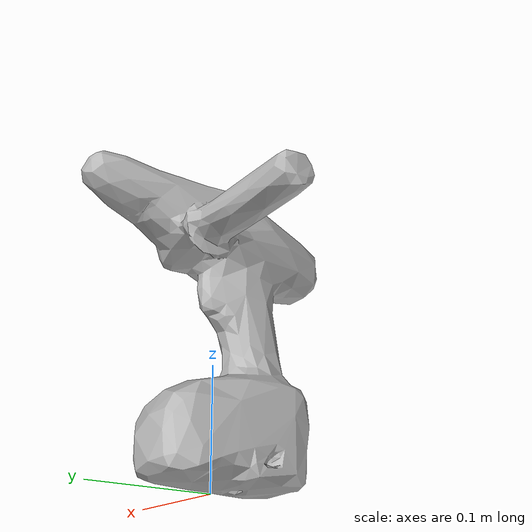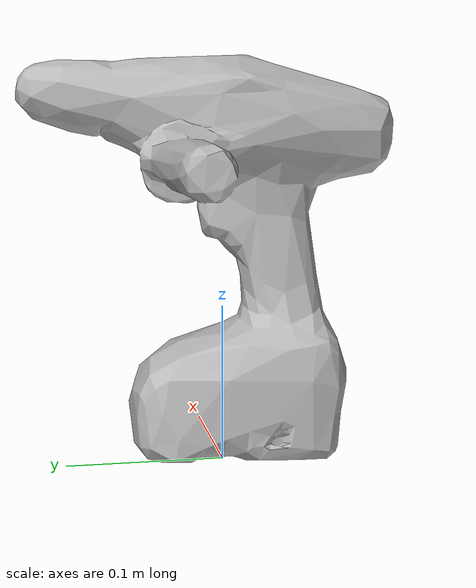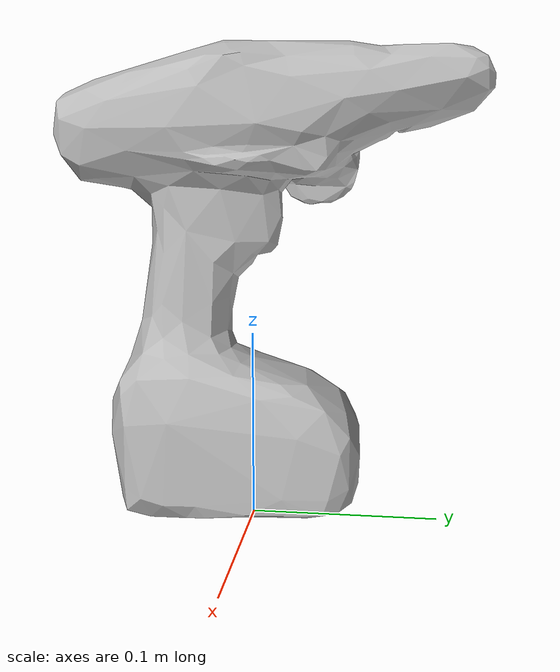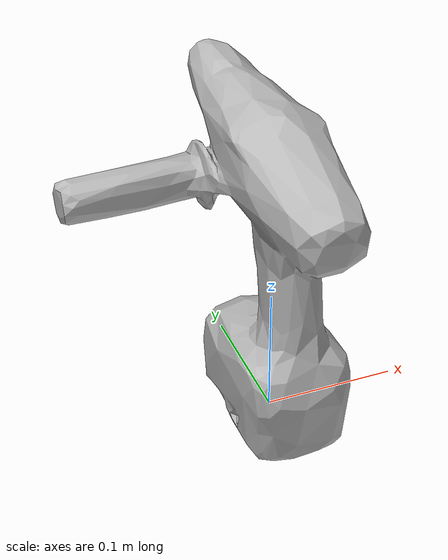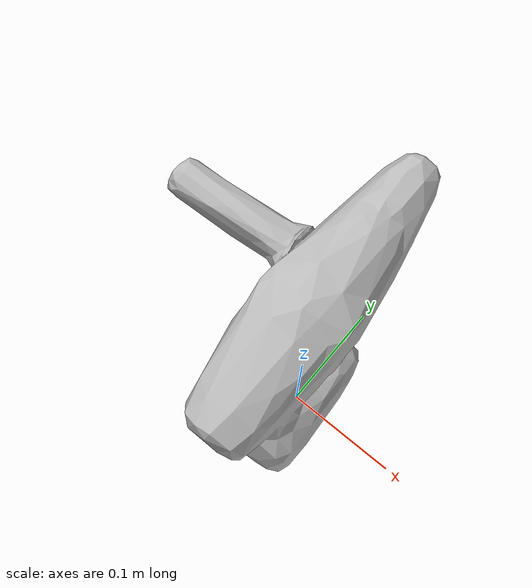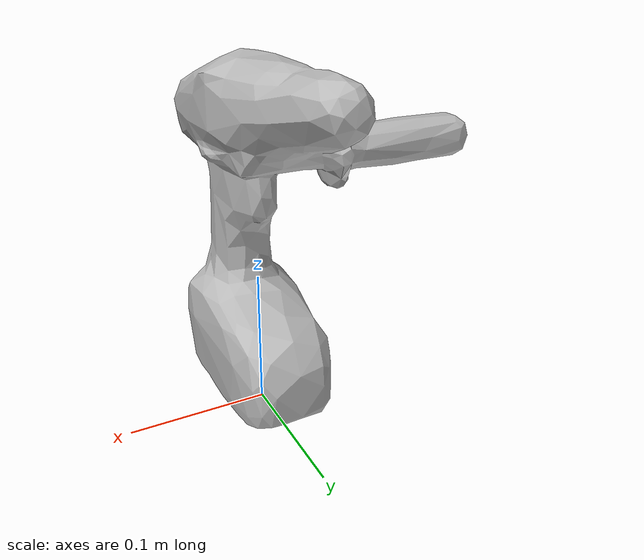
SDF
<?xml version="1.0" ?>
<sdf version="1.5">
  <model name="drill">
    <static>true</static>
    <link name="link">
      <inertial>
        <pose>-0.00637 -0.008 0.13254 0 0 0</pose>
        <inertia>
          <ixx>0.01331127</ixx>
          <ixy>-0.00030365</ixy>
          <ixz>-0.00034148</ixz>
          <iyy>0.01157659</iyy>
          <iyz>0.00088073</iyz>
          <izz>0.00378028</izz>
        </inertia>
        <mass>1.50251902</mass>
      </inertial>
      <collision name="collision">
        <pose>0 0 -0.09 0 0 0</pose>
        <geometry>
          <mesh>
            <uri>model://models/drill/meshes/cordless drill.stl</uri>
          </mesh>
        </geometry>
        <surface>
          <contact>
            <ode>
              <max_vel>0.1</max_vel>
              <min_depth>0.001</min_depth>
            </ode>
          </contact>
        </surface>
      </collision>
      <visual name="visual">
        <pose>0 0 -0.09 0 0 0</pose>
        <geometry>
          <mesh>
            <uri>model://models/drill/meshes/cordless drill.dae</uri>
          </mesh>
        </geometry>
      </visual>
    </link>
  </model>
</sdf>
